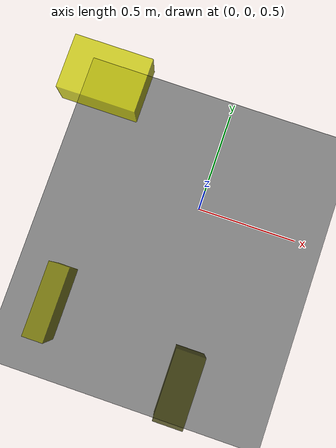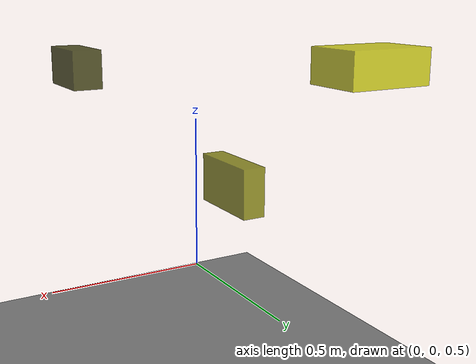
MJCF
<?xml version="1.0"?>
<mujoco model="obstacle_scene">
  <compiler angle="radian" coordinate="local"/>
  <option timestep="0.001" gravity="0 0 -9.81"/>

  <asset>
    <material name="obstacle_mat" rgba="0.8 0.8 0.0 0.8"/>
    <material name="ground_mat" rgba="0.5 0.5 0.5 1"/>
  </asset>

  <worldbody>
    <!-- Ground plane -->
    <geom name="ground" type="plane" size="3 3 0.1" material="ground_mat"/>

    <!-- Obstacles -->
    <body name="obstacle_0" pos="0.142857 -0.750118 1.103910">
      <geom name="obs_0" type="box" size="0.057365 0.134962 0.075626" rgba="0.2 0.2 0.0 0.8"/>
    </body>
    <body name="obstacle_1" pos="-0.532445 -0.661452 0.550462">
      <geom name="obs_1" type="box" size="0.051699 0.182514 0.111101" rgba="0.5 0.5 0.0 0.8"/>
    </body>
    <body name="obstacle_2" pos="-0.495812 0.262614 1.170255">
      <geom name="obs_2" type="box" size="0.155047 0.108137 0.061562" rgba="0.8 0.8 0.0 0.8"/>
    </body>
  </worldbody>
</mujoco>
